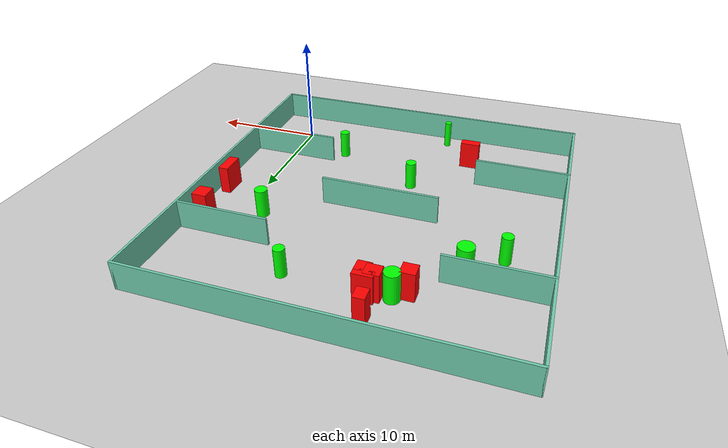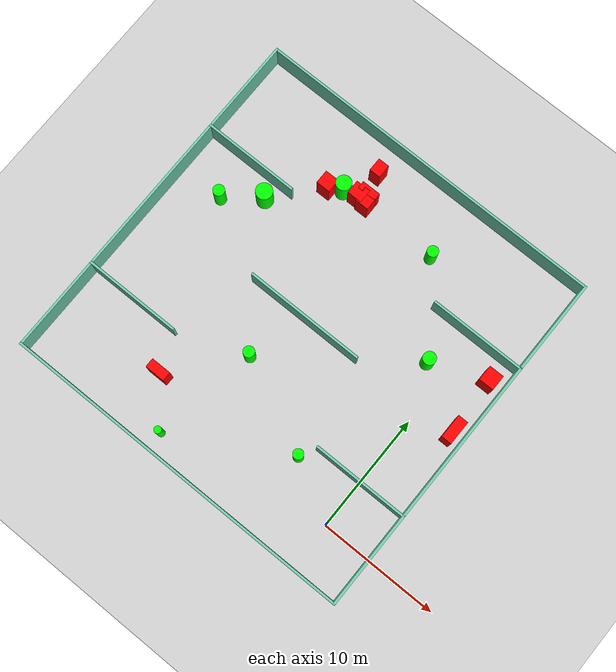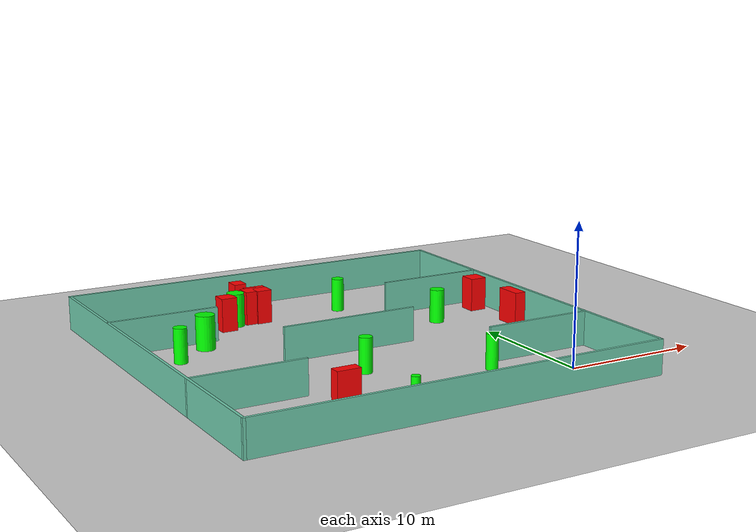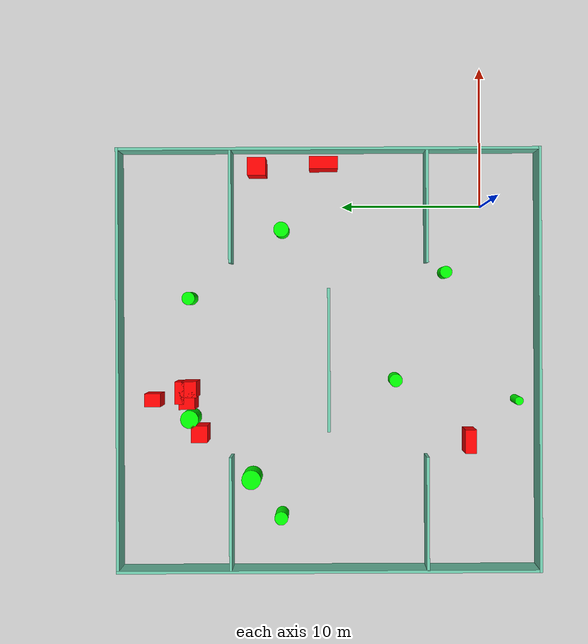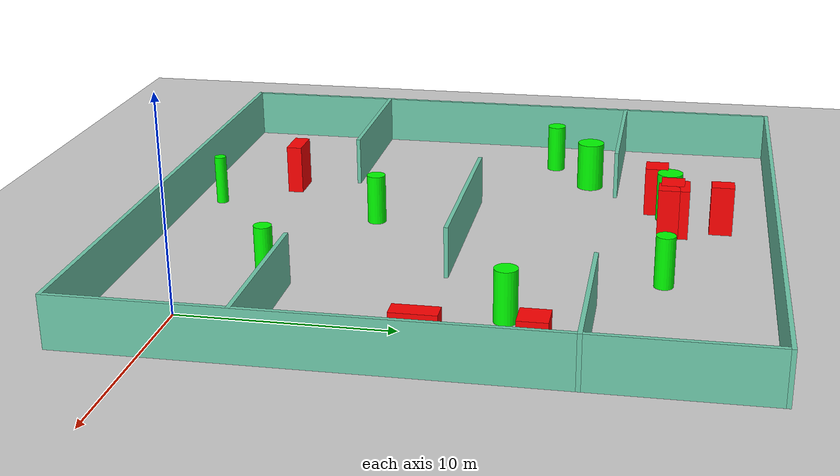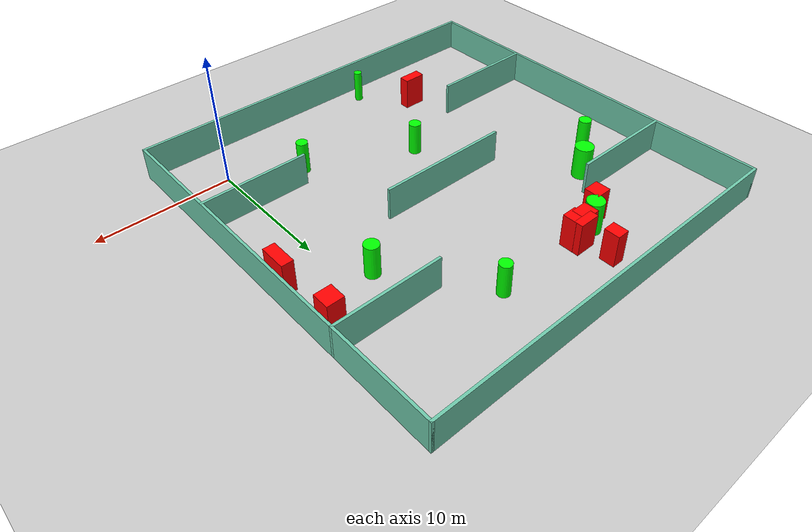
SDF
<sdf version="1.7">
 <world name="default">
  <light name="sun" type="directional">
   <pose>0 0 10 0 -0 0</pose>
   <diffuse>0.8 0.8 0.8 1</diffuse>
   <specular>0.2 0.2 0.2 1</specular>
   <attenuation>
    <range>1000</range>
    <constant>0.9</constant>
    <linear>0.01</linear>
    <quadratic>0.001</quadratic>
   </attenuation>
   <direction>-0.5 0.1 -0.9</direction>
   <spot><inner_angle>0</inner_angle><outer_angle>0</outer_angle><falloff>0</falloff></spot>
  </light>
  <model name="ground_plane">
   <static>1</static>
   <link name="link">
    <collision name="collision">
     <geometry><plane><normal>0 0 1</normal><size>100 100</size></plane></geometry>
     <surface>
      <contact><collide_bitmask>65535</collide_bitmask></contact>
      <friction><ode><mu>100</mu><mu2>50</mu2></ode></friction>
     </surface>
    </collision>
    <visual name="visual">
     <cast_shadows>0</cast_shadows>
     <geometry><plane><normal>0 0 1</normal><size>100 100</size></plane></geometry>
     <material>
      <script><uri>file://media/materials/scripts/gazebo.material</uri><name>Gazebo/Grey</name></script>
     </material>
    </visual>
   </link>
  </model>
  <gravity>0 0 -9.8</gravity>
  <magnetic_field>6e-06 2.3e-05 -4.2e-05</magnetic_field>
  <atmosphere type="adiabatic"/>
  <physics type="ode">
   <max_step_size>0.001</max_step_size>
   <real_time_factor>1</real_time_factor>
   <real_time_update_rate>1000</real_time_update_rate>
  </physics>
  <scene><ambient>0.4 0.4 0.4 1</ambient><background>0.7 0.7 0.7 1</background><shadows>1</shadows></scene>
  <spherical_coordinates>
   <surface_model>EARTH_WGS84</surface_model>
   <latitude_deg>0</latitude_deg>
   <longitude_deg>0</longitude_deg>
   <elevation>0</elevation>
   <heading_deg>0</heading_deg>
  </spherical_coordinates>
  <model name="my_base_walls">
   <link name="Wall_10">
    <collision name="Wall_10_Collision">
     <geometry><box><size>8.2 0.2 2.5</size></box></geometry>
     <pose>0 0 1.25 0 -0 0</pose>
    </collision>
    <visual name="Wall_10_Visual">
     <pose>0 0 1.25 0 -0 0</pose>
     <geometry><box><size>8.2 0.2 2.5</size></box></geometry>
     <material>
      <script><uri>file://media/materials/scripts/gazebo.material</uri><name>Gazebo/Grey</name></script>
      <ambient>0.435294 0.796078 0.67451 1</ambient>
     </material>
     <meta><layer>0</layer></meta>
    </visual>
    <pose>-11 -7 0 0 -0 0</pose>
   </link>
   <link name="Wall_12">
    <collision name="Wall_12_Collision">
     <geometry><box><size>8.2 0.2 2.5</size></box></geometry>
     <pose>0 0 1.25 0 -0 0</pose>
    </collision>
    <visual name="Wall_12_Visual">
     <pose>0 0 1.25 0 -0 0</pose>
     <geometry><box><size>8.2 0.2 2.5</size></box></geometry>
     <material>
      <script><uri>file://media/materials/scripts/gazebo.material</uri><name>Gazebo/Grey</name></script>
      <ambient>0.435294 0.796078 0.67451 1</ambient>
     </material>
     <meta><layer>0</layer></meta>
    </visual>
    <pose>-11 7 0 0 -0 0</pose>
   </link>
   <link name="Wall_14">
    <collision name="Wall_14_Collision">
     <geometry><box><size>8.2 0.2 2.5</size></box></geometry>
     <pose>0 0 1.25 0 -0 0</pose>
    </collision>
    <visual name="Wall_14_Visual">
     <pose>0 0 1.25 0 -0 0</pose>
     <geometry><box><size>8.2 0.2 2.5</size></box></geometry>
     <material>
      <script><uri>file://media/materials/scripts/gazebo.material</uri><name>Gazebo/Grey</name></script>
      <ambient>0.435294 0.796078 0.67451 1</ambient>
     </material>
     <meta><layer>0</layer></meta>
    </visual>
    <pose>11 7 0 0 -0 3.14159</pose>
   </link>
   <link name="Wall_16">
    <collision name="Wall_16_Collision">
     <geometry><box><size>10.2 0.2 2.5</size></box></geometry>
     <pose>0 0 1.25 0 -0 0</pose>
    </collision>
    <visual name="Wall_16_Visual">
     <pose>0 0 1.25 0 -0 0</pose>
     <geometry><box><size>10.2 0.2 2.5</size></box></geometry>
     <material>
      <script><uri>file://media/materials/scripts/gazebo.material</uri><name>Gazebo/Grey</name></script>
      <ambient>0.435294 0.796078 0.67451 1</ambient>
     </material>
     <meta><layer>0</layer></meta>
    </visual>
    <pose>0 0 0 0 -0 3.14159</pose>
   </link>
   <link name="Wall_2">
    <collision name="Wall_2_Collision">
     <geometry><box><size>30.2 0.2 2.5</size></box></geometry>
     <pose>0 0 1.25 0 -0 0</pose>
    </collision>
    <visual name="Wall_2_Visual">
     <pose>0 0 1.25 0 -0 0</pose>
     <geometry><box><size>30.2 0.2 2.5</size></box></geometry>
     <material>
      <script><uri>file://media/materials/scripts/gazebo.material</uri><name>Gazebo/Grey</name></script>
      <ambient>0.435294 0.796078 0.67451 1</ambient>
     </material>
     <meta><layer>0</layer></meta>
    </visual>
    <pose>0 -15 0 0 -0 3.14159</pose>
   </link>
   <link name="Wall_3">
    <collision name="Wall_3_Collision">
     <geometry><box><size>30.2 0.2 2.5</size></box></geometry>
     <pose>0 0 1.25 0 -0 0</pose>
    </collision>
    <visual name="Wall_3_Visual">
     <pose>0 0 1.25 0 -0 0</pose>
     <geometry><box><size>30.2 0.2 2.5</size></box></geometry>
     <material>
      <script><uri>file://media/materials/scripts/gazebo.material</uri><name>Gazebo/Grey</name></script>
      <ambient>0.435294 0.796078 0.67451 1</ambient>
     </material>
     <meta><layer>0</layer></meta>
    </visual>
    <pose>-15 0 0 0 -0 1.5708</pose>
   </link>
   <link name="Wall_4">
    <collision name="Wall_4_Collision">
     <geometry><box><size>30.2 0.2 2.5</size></box></geometry>
     <pose>0 0 1.25 0 -0 0</pose>
    </collision>
    <visual name="Wall_4_Visual">
     <pose>0 0 1.25 0 -0 0</pose>
     <geometry><box><size>30.2 0.2 2.5</size></box></geometry>
     <material>
      <script><uri>file://media/materials/scripts/gazebo.material</uri><name>Gazebo/Grey</name></script>
      <ambient>0.435294 0.796078 0.67451 1</ambient>
     </material>
     <meta><layer>0</layer></meta>
    </visual>
    <pose>0 15 0 0 -0 0</pose>
   </link>
   <link name="Wall_6">
    <collision name="Wall_6_Collision">
     <geometry><box><size>30.2 0.2 2.5</size></box></geometry>
     <pose>0 0 1.25 0 -0 0</pose>
    </collision>
    <visual name="Wall_6_Visual">
     <pose>0 0 1.25 0 -0 0</pose>
     <geometry><box><size>30.2 0.2 2.5</size></box></geometry>
     <material>
      <script><uri>file://media/materials/scripts/gazebo.material</uri><name>Gazebo/Grey</name></script>
      <ambient>0.435294 0.796078 0.67451 1</ambient>
     </material>
     <meta><layer>0</layer></meta>
    </visual>
    <pose>15 0 0 0 -0 1.5708</pose>
   </link>
   <link name="Wall_8">
    <collision name="Wall_8_Collision">
     <geometry><box><size>8.2 0.2 2.5</size></box></geometry>
     <pose>0 0 1.25 0 -0 0</pose>
    </collision>
    <visual name="Wall_8_Visual">
     <pose>0 0 1.25 0 -0 0</pose>
     <geometry><box><size>8.2 0.2 2.5</size></box></geometry>
     <material>
      <script><uri>file://media/materials/scripts/gazebo.material</uri><name>Gazebo/Grey</name></script>
      <ambient>0.435294 0.796078 0.67451 1</ambient>
     </material>
     <meta><layer>0</layer></meta>
    </visual>
    <pose>11 -7 0 0 -0 3.14159</pose>
   </link>
   <static>1</static>
   <pose>-11 11 0 0 -0 0</pose>
  </model>
  <model name="cylinder1">
   <static>1</static>
   <link name="link">
    <inertial>
     <mass>1</mass>
     <inertia><ixx>0.5</ixx><ixy>0</ixy><ixz>0</ixz><iyy>0.5</iyy><iyz>0</iyz><izz>1</izz></inertia>
    </inertial>
    <collision name="collision">
     <geometry><cylinder><radius>0.4609455575629966</radius><length>2.5</length></cylinder></geometry>
    </collision>
    <visual name="visual">
     <geometry><cylinder><radius>0.4609455575629966</radius><length>2.5</length></cylinder></geometry>
     <material>
      <ambient>0 1 0 1</ambient>
      <diffuse>0 1 0 1</diffuse>
      <specular>0.1 0.1 0.1 1</specular>
      <emissive>0 0 0 0</emissive>
     </material>
    </visual>
   </link>
   <pose>-6.592447641601213 20.94697505827204 1.25 0 0 0</pose>
  </model>
  <model name="cylinder2">
   <static>1</static>
   <link name="link">
    <inertial>
     <mass>1</mass>
     <inertia><ixx>0.5</ixx><ixy>0</ixy><ixz>0</ixz><iyy>0.5</iyy><iyz>0</iyz><izz>1</izz></inertia>
    </inertial>
    <collision name="collision">
     <geometry><cylinder><radius>0.3004516952086301</radius><length>2.5</length></cylinder></geometry>
    </collision>
    <visual name="visual">
     <geometry><cylinder><radius>0.3004516952086301</radius><length>2.5</length></cylinder></geometry>
     <material>
      <ambient>0 1 0 1</ambient>
      <diffuse>0 1 0 1</diffuse>
      <specular>0.1 0.1 0.1 1</specular>
      <emissive>0 0 0 0</emissive>
     </material>
    </visual>
   </link>
   <pose>-13.932513360547059 -2.4692829667511975 1.25 0 0 0</pose>
  </model>
  <model name="cylinder3">
   <static>1</static>
   <link name="link">
    <inertial>
     <mass>1</mass>
     <inertia><ixx>0.5</ixx><ixy>0</ixy><ixz>0</ixz><iyy>0.5</iyy><iyz>0</iyz><izz>1</izz></inertia>
    </inertial>
    <collision name="collision">
     <geometry><cylinder><radius>0.46446086395081754</radius><length>2.5</length></cylinder></geometry>
    </collision>
    <visual name="visual">
     <geometry><cylinder><radius>0.46446086395081754</radius><length>2.5</length></cylinder></geometry>
     <material>
      <ambient>0 1 0 1</ambient>
      <diffuse>0 1 0 1</diffuse>
      <specular>0.1 0.1 0.1 1</specular>
      <emissive>0 0 0 0</emissive>
     </material>
    </visual>
   </link>
   <pose>-12.457681690666096 6.248640887198128 1.25 0 0 0</pose>
  </model>
  <model name="cylinder4">
   <static>1</static>
   <link name="link">
    <inertial>
     <mass>1</mass>
     <inertia><ixx>0.5</ixx><ixy>0</ixy><ixz>0</ixz><iyy>0.5</iyy><iyz>0</iyz><izz>1</izz></inertia>
    </inertial>
    <collision name="collision">
     <geometry><cylinder><radius>0.5393532105762366</radius><length>2.5</length></cylinder></geometry>
    </collision>
    <visual name="visual">
     <geometry><cylinder><radius>0.5393532105762366</radius><length>2.5</length></cylinder></geometry>
     <material>
      <ambient>0 1 0 1</ambient>
      <diffuse>0 1 0 1</diffuse>
      <specular>0.1 0.1 0.1 1</specular>
      <emissive>0 0 0 0</emissive>
     </material>
    </visual>
   </link>
   <pose>-1.73158215022681 14.357007311736304 1.25 0 0 0</pose>
  </model>
  <model name="cylinder5">
   <static>1</static>
   <link name="link">
    <inertial>
     <mass>1</mass>
     <inertia><ixx>0.5</ixx><ixy>0</ixy><ixz>0</ixz><iyy>0.5</iyy><iyz>0</iyz><izz>1</izz></inertia>
    </inertial>
    <collision name="collision">
     <geometry><cylinder><radius>0.6895775876433713</radius><length>2.5</length></cylinder></geometry>
    </collision>
    <visual name="visual">
     <geometry><cylinder><radius>0.6895775876433713</radius><length>2.5</length></cylinder></geometry>
     <material>
      <ambient>0 1 0 1</ambient>
      <diffuse>0 1 0 1</diffuse>
      <specular>0.1 0.1 0.1 1</specular>
      <emissive>0 0 0 0</emissive>
     </material>
    </visual>
   </link>
   <pose>-19.469012916766427 16.528793004870685 1.25 0 0 0</pose>
  </model>
  <model name="cylinder6">
   <static>1</static>
   <link name="link">
    <inertial>
     <mass>1</mass>
     <inertia><ixx>0.5</ixx><ixy>0</ixy><ixz>0</ixz><iyy>0.5</iyy><iyz>0</iyz><izz>1</izz></inertia>
    </inertial>
    <collision name="collision">
     <geometry><cylinder><radius>0.42965970006333876</radius><length>2.5</length></cylinder></geometry>
    </collision>
    <visual name="visual">
     <geometry><cylinder><radius>0.42965970006333876</radius><length>2.5</length></cylinder></geometry>
     <material>
      <ambient>0 1 0 1</ambient>
      <diffuse>0 1 0 1</diffuse>
      <specular>0.1 0.1 0.1 1</specular>
      <emissive>0 0 0 0</emissive>
     </material>
    </visual>
   </link>
   <pose>-4.79058156719524 2.677217962979136 1.25 0 0 0</pose>
  </model>
  <model name="cylinder7">
   <static>1</static>
   <link name="link">
    <inertial>
     <mass>1</mass>
     <inertia><ixx>0.5</ixx><ixy>0</ixy><ixz>0</ixz><iyy>0.5</iyy><iyz>0</iyz><izz>1</izz></inertia>
    </inertial>
    <collision name="collision">
     <geometry><cylinder><radius>0.47671873344534293</radius><length>2.5</length></cylinder></geometry>
    </collision>
    <visual name="visual">
     <geometry><cylinder><radius>0.47671873344534293</radius><length>2.5</length></cylinder></geometry>
     <material>
      <ambient>0 1 0 1</ambient>
      <diffuse>0 1 0 1</diffuse>
      <specular>0.1 0.1 0.1 1</specular>
      <emissive>0 0 0 0</emissive>
     </material>
    </visual>
   </link>
   <pose>-22.198901554666936 14.402715058877973 1.25 0 0 0</pose>
  </model>
  <model name="cylinder8">
   <static>1</static>
   <link name="link">
    <inertial>
     <mass>1</mass>
     <inertia><ixx>0.5</ixx><ixy>0</ixy><ixz>0</ixz><iyy>0.5</iyy><iyz>0</iyz><izz>1</izz></inertia>
    </inertial>
    <collision name="collision">
     <geometry><cylinder><radius>0.6412506607389012</radius><length>2.5</length></cylinder></geometry>
    </collision>
    <visual name="visual">
     <geometry><cylinder><radius>0.6412506607389012</radius><length>2.5</length></cylinder></geometry>
     <material>
      <ambient>0 1 0 1</ambient>
      <diffuse>0 1 0 1</diffuse>
      <specular>0.1 0.1 0.1 1</specular>
      <emissive>0 0 0 0</emissive>
     </material>
    </visual>
   </link>
   <pose>-15.17593480297176 20.888259088357845 1.25 0 0 0</pose>
  </model>
  <model name="box1">
   <static>1</static>
   <link name="link">
    <inertial>
     <mass>1</mass>
     <inertia><ixx>0.083</ixx><ixy>0</ixy><ixz>0</ixz><iyy>0.083</iyy><iyz>0</iyz><izz>0.083</izz></inertia>
    </inertial>
    <collision name="collision">
     <geometry><box><size>1.6002805445423305 0.6341433862114463 2.5</size></box></geometry>
    </collision>
    <visual name="visual">
     <geometry><box><size>1.6002805445423305 0.6341433862114463 2.5</size></box></geometry>
     <material>
      <ambient>1 0 0 1</ambient>
      <diffuse>1 0 0 1</diffuse>
      <specular>0.1 0.1 0.1 1</specular>
      <emissive>0 0 0 0</emissive>
     </material>
    </visual>
    <sensor name="my_contact" type="contact">
     <contact><collision>box_collision</collision><topic>__default_topic__</topic></contact>
    </sensor>
   </link>
   <pose>-13.296436645949111 21.598305623051104 1.25 0 0 0</pose>
  </model>
  <model name="box2">
   <static>1</static>
   <link name="link">
    <inertial>
     <mass>1</mass>
     <inertia><ixx>0.083</ixx><ixy>0</ixy><ixz>0</ixz><iyy>0.083</iyy><iyz>0</iyz><izz>0.083</izz></inertia>
    </inertial>
    <collision name="collision">
     <geometry><box><size>1.198954433045071 1.1516020741052373 2.5</size></box></geometry>
    </collision>
    <visual name="visual">
     <geometry><box><size>1.198954433045071 1.1516020741052373 2.5</size></box></geometry>
     <material>
      <ambient>1 0 0 1</ambient>
      <diffuse>1 0 0 1</diffuse>
      <specular>0.1 0.1 0.1 1</specular>
      <emissive>0 0 0 0</emissive>
     </material>
    </visual>
    <sensor name="my_contact" type="contact">
     <contact><collision>box_collision</collision><topic>__default_topic__</topic></contact>
    </sensor>
   </link>
   <pose>-16.21445733017923 20.196933827087896 1.25 0 0 0</pose>
  </model>
  <model name="box3">
   <static>1</static>
   <link name="link">
    <inertial>
     <mass>1</mass>
     <inertia><ixx>0.083</ixx><ixy>0</ixy><ixz>0</ixz><iyy>0.083</iyy><iyz>0</iyz><izz>0.083</izz></inertia>
    </inertial>
    <collision name="collision">
     <geometry><box><size>1.1388651566693144 1.0559256497501277 2.5</size></box></geometry>
    </collision>
    <visual name="visual">
     <geometry><box><size>1.1388651566693144 1.0559256497501277 2.5</size></box></geometry>
     <material>
      <ambient>1 0 0 1</ambient>
      <diffuse>1 0 0 1</diffuse>
      <specular>0.1 0.1 0.1 1</specular>
      <emissive>0 0 0 0</emissive>
     </material>
    </visual>
    <sensor name="my_contact" type="contact">
     <contact><collision>box_collision</collision><topic>__default_topic__</topic></contact>
    </sensor>
   </link>
   <pose>-13.056783470315459 20.91308062487281 1.25 0 0 0</pose>
  </model>
  <model name="box4">
   <static>1</static>
   <link name="link">
    <inertial>
     <mass>1</mass>
     <inertia><ixx>0.083</ixx><ixy>0</ixy><ixz>0</ixz><iyy>0.083</iyy><iyz>0</iyz><izz>0.083</izz></inertia>
    </inertial>
    <collision name="collision">
     <geometry><box><size>0.9433866994505259 1.1290092009371926 2.5</size></box></geometry>
    </collision>
    <visual name="visual">
     <geometry><box><size>0.9433866994505259 1.1290092009371926 2.5</size></box></geometry>
     <material>
      <ambient>1 0 0 1</ambient>
      <diffuse>1 0 0 1</diffuse>
      <specular>0.1 0.1 0.1 1</specular>
      <emissive>0 0 0 0</emissive>
     </material>
    </visual>
    <sensor name="my_contact" type="contact">
     <contact><collision>box_collision</collision><topic>__default_topic__</topic></contact>
    </sensor>
   </link>
   <pose>-13.818978536668705 23.518471253250393 1.25 0 0 0</pose>
  </model>
  <model name="box5">
   <static>1</static>
   <link name="link">
    <inertial>
     <mass>1</mass>
     <inertia><ixx>0.083</ixx><ixy>0</ixy><ixz>0</ixz><iyy>0.083</iyy><iyz>0</iyz><izz>0.083</izz></inertia>
    </inertial>
    <collision name="collision">
     <geometry><box><size>1.2609258780878927 1.1444618471516939 2.5</size></box></geometry>
    </collision>
    <visual name="visual">
     <geometry><box><size>1.2609258780878927 1.1444618471516939 2.5</size></box></geometry>
     <material>
      <ambient>1 0 0 1</ambient>
      <diffuse>1 0 0 1</diffuse>
      <specular>0.1 0.1 0.1 1</specular>
      <emissive>0 0 0 0</emissive>
     </material>
    </visual>
    <sensor name="my_contact" type="contact">
     <contact><collision>box_collision</collision><topic>__default_topic__</topic></contact>
    </sensor>
   </link>
   <pose>-13.851229299141634 21.06940134262761 1.25 0 0 0</pose>
  </model>
  <model name="box6">
   <static>1</static>
   <link name="link">
    <inertial>
     <mass>1</mass>
     <inertia><ixx>0.083</ixx><ixy>0</ixy><ixz>0</ixz><iyy>0.083</iyy><iyz>0</iyz><izz>0.083</izz></inertia>
    </inertial>
    <collision name="collision">
     <geometry><box><size>0.8675870722891714 2.0327505720097236 2.5</size></box></geometry>
    </collision>
    <visual name="visual">
     <geometry><box><size>0.8675870722891714 2.0327505720097236 2.5</size></box></geometry>
     <material>
      <ambient>1 0 0 1</ambient>
      <diffuse>1 0 0 1</diffuse>
      <specular>0.1 0.1 0.1 1</specular>
      <emissive>0 0 0 0</emissive>
     </material>
    </visual>
    <sensor name="my_contact" type="contact">
     <contact><collision>box_collision</collision><topic>__default_topic__</topic></contact>
    </sensor>
   </link>
   <pose>3.000272620121116 11.350965090453311 1.25 0 0 0</pose>
  </model>
  <model name="box7">
   <static>1</static>
   <link name="link">
    <inertial>
     <mass>1</mass>
     <inertia><ixx>0.083</ixx><ixy>0</ixy><ixz>0</ixz><iyy>0.083</iyy><iyz>0</iyz><izz>0.083</izz></inertia>
    </inertial>
    <collision name="collision">
     <geometry><box><size>1.2704908739256962 1.2983767800822537 2.5</size></box></geometry>
    </collision>
    <visual name="visual">
     <geometry><box><size>1.2704908739256962 1.2983767800822537 2.5</size></box></geometry>
     <material>
      <ambient>1 0 0 1</ambient>
      <diffuse>1 0 0 1</diffuse>
      <specular>0.1 0.1 0.1 1</specular>
      <emissive>0 0 0 0</emissive>
     </material>
    </visual>
    <sensor name="my_contact" type="contact">
     <contact><collision>box_collision</collision><topic>__default_topic__</topic></contact>
    </sensor>
   </link>
   <pose>2.739546315834531 16.089236676624708 1.25 0 0 0</pose>
  </model>
  <model name="box8">
   <static>1</static>
   <link name="link">
    <inertial>
     <mass>1</mass>
     <inertia><ixx>0.083</ixx><ixy>0</ixy><ixz>0</ixz><iyy>0.083</iyy><iyz>0</iyz><izz>0.083</izz></inertia>
    </inertial>
    <collision name="collision">
     <geometry><box><size>1.6984456710023168 0.7845175974477017 2.5</size></box></geometry>
    </collision>
    <visual name="visual">
     <geometry><box><size>1.6984456710023168 0.7845175974477017 2.5</size></box></geometry>
     <material>
      <ambient>1 0 0 1</ambient>
      <diffuse>1 0 0 1</diffuse>
      <specular>0.1 0.1 0.1 1</specular>
      <emissive>0 0 0 0</emissive>
     </material>
    </visual>
    <sensor name="my_contact" type="contact">
     <contact><collision>box_collision</collision><topic>__default_topic__</topic></contact>
    </sensor>
   </link>
   <pose>-16.819418044400667 0.9430453976931505 1.25 0 0 0</pose>
  </model>
 </world>
</sdf>
